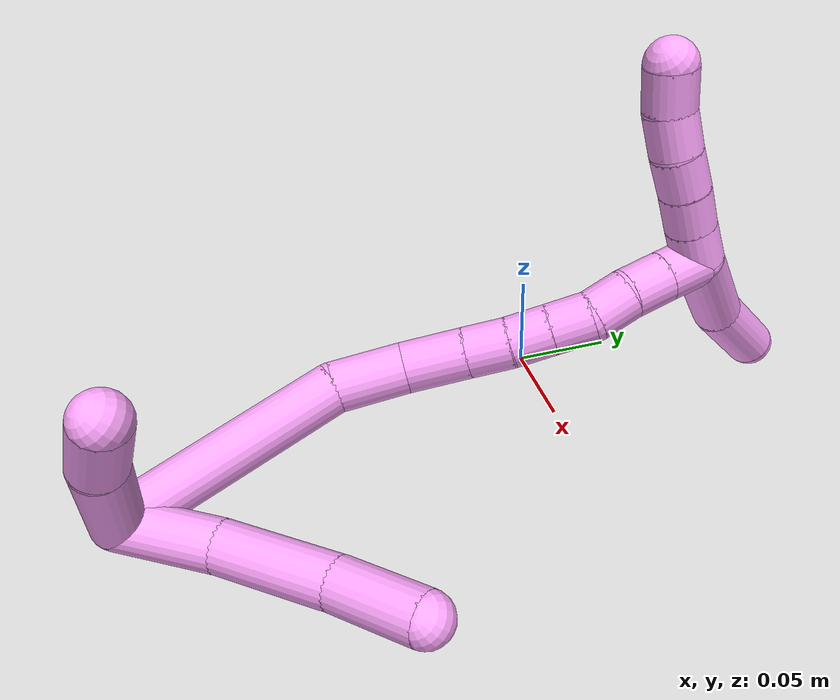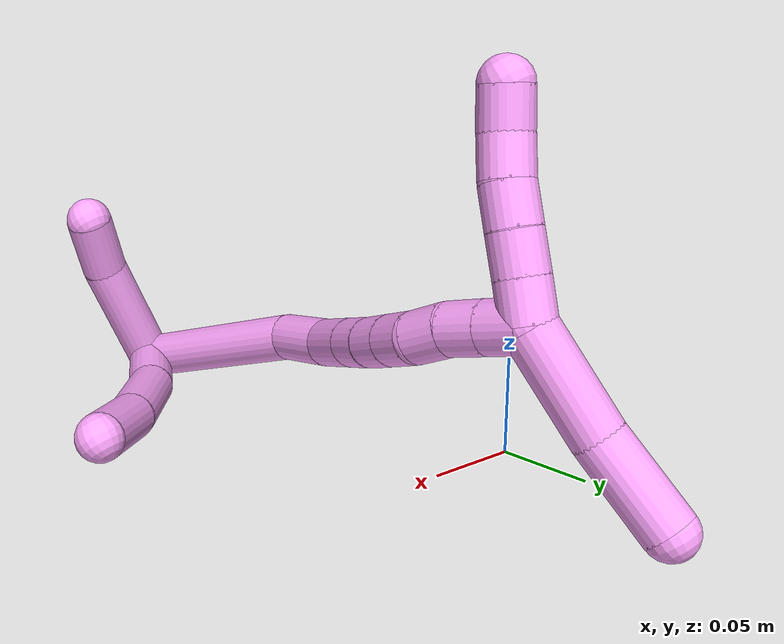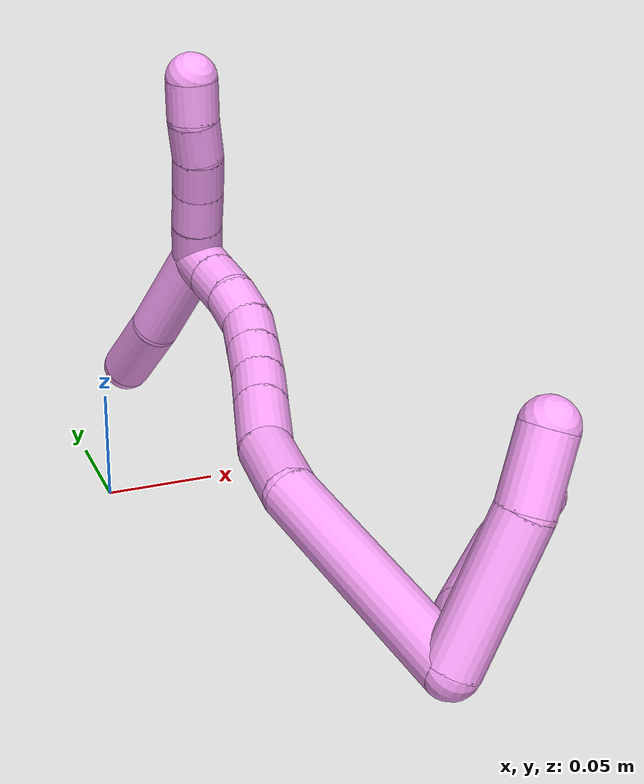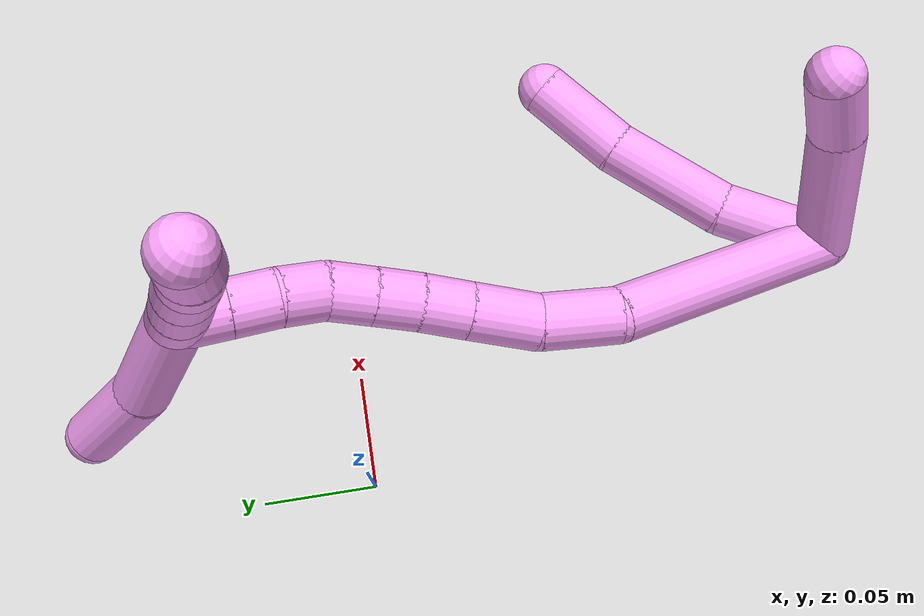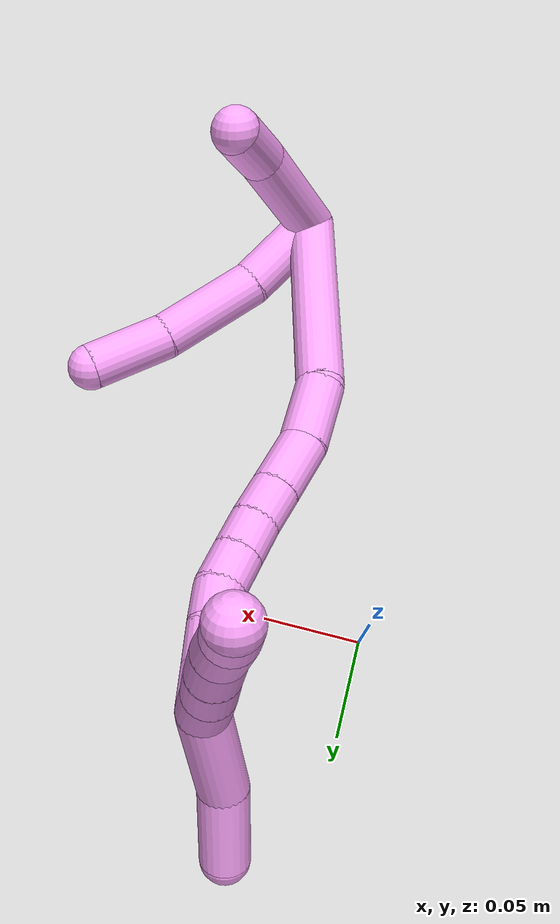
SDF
<sdf version="1.7">
 <world name="default">
  <model name="4">
   <static>0</static>
   <link name="4">
    <collision name="collision-cylinder-e_1_2_8">
     <pose>0.012915 0.017003 -0.011231 -2.15454 0.564893 -0.989474</pose>
     <geometry><cylinder><radius>0.0125</radius><length>0.048251</length></cylinder></geometry>
     <surface>
      <friction><ode><mu>1.16</mu><mu2>1.16</mu2><slip1>0</slip1><slip2>0</slip2></ode></friction>
      <contact><ode><kp>1e+06</kp><kd>1</kd><max_vel>0</max_vel><min_depth>0.001</min_depth></ode></contact>
     </surface>
    </collision>
    <visual name="visual-cylinder-e_1_2_8">
     <pose>0.012915 0.017003 -0.011231 -2.15454 0.564893 -0.989474</pose>
     <geometry><cylinder><radius>0.0125</radius><length>0.048251</length></cylinder></geometry>
     <material><ambient>1 0.65098 0.996078 1</ambient></material>
    </visual>
    <collision name="collision-cylinder-e_2_8_9">
     <pose>0.044722 0.053907 -0.030806 -1.9678 0.719081 -1.02883</pose>
     <geometry><cylinder><radius>0.0125</radius><length>0.057361</length></cylinder></geometry>
     <surface>
      <friction><ode><mu>1.16</mu><mu2>1.16</mu2><slip1>0</slip1><slip2>0</slip2></ode></friction>
      <contact><ode><kp>1e+06</kp><kd>1</kd><max_vel>0</max_vel><min_depth>0.001</min_depth></ode></contact>
     </surface>
    </collision>
    <visual name="visual-cylinder-e_2_8_9">
     <pose>0.044722 0.053907 -0.030806 -1.9678 0.719081 -1.02883</pose>
     <geometry><cylinder><radius>0.0125</radius><length>0.057361</length></cylinder></geometry>
     <material><ambient>1 0.65098 0.996078 1</ambient></material>
    </visual>
    <collision name="collision-cylinder-e_3_9_6">
     <pose>0.079827 0.08858 -0.042543 -1.79655 0.819117 -0.998165</pose>
     <geometry><cylinder><radius>0.0125</radius><length>0.044388</length></cylinder></geometry>
     <surface>
      <friction><ode><mu>1.16</mu><mu2>1.16</mu2><slip1>0</slip1><slip2>0</slip2></ode></friction>
      <contact><ode><kp>1e+06</kp><kd>1</kd><max_vel>0</max_vel><min_depth>0.001</min_depth></ode></contact>
     </surface>
    </collision>
    <visual name="visual-cylinder-e_3_9_6">
     <pose>0.079827 0.08858 -0.042543 -1.79655 0.819117 -0.998165</pose>
     <geometry><cylinder><radius>0.0125</radius><length>0.044388</length></cylinder></geometry>
     <material><ambient>1 0.65098 0.996078 1</ambient></material>
    </visual>
    <collision name="collision-cylinder-e_1_2_10">
     <pose>0.00893 0.019322 0.025879 -0.641335 0.269762 -0.090082</pose>
     <geometry><cylinder><radius>0.0125</radius><length>0.067017</length></cylinder></geometry>
     <surface>
      <friction><ode><mu>1.16</mu><mu2>1.16</mu2><slip1>0</slip1><slip2>0</slip2></ode></friction>
      <contact><ode><kp>1e+06</kp><kd>1</kd><max_vel>0</max_vel><min_depth>0.001</min_depth></ode></contact>
     </surface>
    </collision>
    <visual name="visual-cylinder-e_1_2_10">
     <pose>0.00893 0.019322 0.025879 -0.641335 0.269762 -0.090082</pose>
     <geometry><cylinder><radius>0.0125</radius><length>0.067017</length></cylinder></geometry>
     <material><ambient>1 0.65098 0.996078 1</ambient></material>
    </visual>
    <collision name="collision-cylinder-e_2_10_5">
     <pose>0.020897 0.050395 0.062924 -0.81093 0.185213 -0.079689</pose>
     <geometry><cylinder><radius>0.0125</radius><length>0.032983</length></cylinder></geometry>
     <surface>
      <friction><ode><mu>1.16</mu><mu2>1.16</mu2><slip1>0</slip1><slip2>0</slip2></ode></friction>
      <contact><ode><kp>1e+06</kp><kd>1</kd><max_vel>0</max_vel><min_depth>0.001</min_depth></ode></contact>
     </surface>
    </collision>
    <visual name="visual-cylinder-e_2_10_5">
     <pose>0.020897 0.050395 0.062924 -0.81093 0.185213 -0.079689</pose>
     <geometry><cylinder><radius>0.0125</radius><length>0.032983</length></cylinder></geometry>
     <material><ambient>1 0.65098 0.996078 1</ambient></material>
    </visual>
    <collision name="collision-cylinder-e_1_2_11">
     <pose>-0.014648 0.050302 -0.020219 -1.95299 -0.263898 0.38784</pose>
     <geometry><cylinder><radius>0.0125</radius><length>0.112315</length></cylinder></geometry>
     <surface>
      <friction><ode><mu>1.16</mu><mu2>1.16</mu2><slip1>0</slip1><slip2>0</slip2></ode></friction>
      <contact><ode><kp>1e+06</kp><kd>1</kd><max_vel>0</max_vel><min_depth>0.001</min_depth></ode></contact>
     </surface>
    </collision>
    <visual name="visual-cylinder-e_1_2_11">
     <pose>-0.014648 0.050302 -0.020219 -1.95299 -0.263898 0.38784</pose>
     <geometry><cylinder><radius>0.0125</radius><length>0.112315</length></cylinder></geometry>
     <material><ambient>1 0.65098 0.996078 1</ambient></material>
    </visual>
    <collision name="collision-cylinder-e_2_11_12">
     <pose>-0.028661 0.116245 -0.048452 -2.04429 0.036161 -0.059148</pose>
     <geometry><cylinder><radius>0.0125</radius><length>0.035172</length></cylinder></geometry>
     <surface>
      <friction><ode><mu>1.16</mu><mu2>1.16</mu2><slip1>0</slip1><slip2>0</slip2></ode></friction>
      <contact><ode><kp>1e+06</kp><kd>1</kd><max_vel>0</max_vel><min_depth>0.001</min_depth></ode></contact>
     </surface>
    </collision>
    <visual name="visual-cylinder-e_2_11_12">
     <pose>-0.028661 0.116245 -0.048452 -2.04429 0.036161 -0.059148</pose>
     <geometry><cylinder><radius>0.0125</radius><length>0.035172</length></cylinder></geometry>
     <material><ambient>1 0.65098 0.996078 1</ambient></material>
    </visual>
    <collision name="collision-cylinder-e_3_12_13">
     <pose>-0.024604 0.146201 -0.060907 -1.87158 0.224388 -0.303473</pose>
     <geometry><cylinder><radius>0.0125</radius><length>0.030747</length></cylinder></geometry>
     <surface>
      <friction><ode><mu>1.16</mu><mu2>1.16</mu2><slip1>0</slip1><slip2>0</slip2></ode></friction>
      <contact><ode><kp>1e+06</kp><kd>1</kd><max_vel>0</max_vel><min_depth>0.001</min_depth></ode></contact>
     </surface>
    </collision>
    <visual name="visual-cylinder-e_3_12_13">
     <pose>-0.024604 0.146201 -0.060907 -1.87158 0.224388 -0.303473</pose>
     <geometry><cylinder><radius>0.0125</radius><length>0.030747</length></cylinder></geometry>
     <material><ambient>1 0.65098 0.996078 1</ambient></material>
    </visual>
    <collision name="collision-cylinder-e_4_13_14">
     <pose>-0.018759 0.170269 -0.068383 -1.87252 0.233023 -0.315371</pose>
     <geometry><cylinder><radius>0.0125</radius><length>0.020997</length></cylinder></geometry>
     <surface>
      <friction><ode><mu>1.16</mu><mu2>1.16</mu2><slip1>0</slip1><slip2>0</slip2></ode></friction>
      <contact><ode><kp>1e+06</kp><kd>1</kd><max_vel>0</max_vel><min_depth>0.001</min_depth></ode></contact>
     </surface>
    </collision>
    <visual name="visual-cylinder-e_4_13_14">
     <pose>-0.018759 0.170269 -0.068383 -1.87252 0.233023 -0.315371</pose>
     <geometry><cylinder><radius>0.0125</radius><length>0.020997</length></cylinder></geometry>
     <material><ambient>1 0.65098 0.996078 1</ambient></material>
    </visual>
    <collision name="collision-cylinder-e_5_14_15">
     <pose>-0.014728 0.189542 -0.074045 -1.84006 0.161341 -0.211565</pose>
     <geometry><cylinder><radius>0.0125</radius><length>0.020011</length></cylinder></geometry>
     <surface>
      <friction><ode><mu>1.16</mu><mu2>1.16</mu2><slip1>0</slip1><slip2>0</slip2></ode></friction>
      <contact><ode><kp>1e+06</kp><kd>1</kd><max_vel>0</max_vel><min_depth>0.001</min_depth></ode></contact>
     </surface>
    </collision>
    <visual name="visual-cylinder-e_5_14_15">
     <pose>-0.014728 0.189542 -0.074045 -1.84006 0.161341 -0.211565</pose>
     <geometry><cylinder><radius>0.0125</radius><length>0.020011</length></cylinder></geometry>
     <material><ambient>1 0.65098 0.996078 1</ambient></material>
    </visual>
    <collision name="collision-cylinder-e_6_15_16">
     <pose>-0.01158 0.208635 -0.079333 -1.8419 0.153842 -0.202142</pose>
     <geometry><cylinder><radius>0.0125</radius><length>0.020109</length></cylinder></geometry>
     <surface>
      <friction><ode><mu>1.16</mu><mu2>1.16</mu2><slip1>0</slip1><slip2>0</slip2></ode></friction>
      <contact><ode><kp>1e+06</kp><kd>1</kd><max_vel>0</max_vel><min_depth>0.001</min_depth></ode></contact>
     </surface>
    </collision>
    <visual name="visual-cylinder-e_6_15_16">
     <pose>-0.01158 0.208635 -0.079333 -1.8419 0.153842 -0.202142</pose>
     <geometry><cylinder><radius>0.0125</radius><length>0.020109</length></cylinder></geometry>
     <material><ambient>1 0.65098 0.996078 1</ambient></material>
    </visual>
    <collision name="collision-cylinder-e_7_16_17">
     <pose>-0.011549 0.227865 -0.084459 -1.82076 -0.150356 0.193326</pose>
     <geometry><cylinder><radius>0.0125</radius><length>0.020163</length></cylinder></geometry>
     <surface>
      <friction><ode><mu>1.16</mu><mu2>1.16</mu2><slip1>0</slip1><slip2>0</slip2></ode></friction>
      <contact><ode><kp>1e+06</kp><kd>1</kd><max_vel>0</max_vel><min_depth>0.001</min_depth></ode></contact>
     </surface>
    </collision>
    <visual name="visual-cylinder-e_7_16_17">
     <pose>-0.011549 0.227865 -0.084459 -1.82076 -0.150356 0.193326</pose>
     <geometry><cylinder><radius>0.0125</radius><length>0.020163</length></cylinder></geometry>
     <material><ambient>1 0.65098 0.996078 1</ambient></material>
    </visual>
    <collision name="collision-cylinder-e_8_17_18">
     <pose>-0.014519 0.246556 -0.090967 -1.99151 -0.146447 0.225407</pose>
     <geometry><cylinder><radius>0.0125</radius><length>0.020005</length></cylinder></geometry>
     <surface>
      <friction><ode><mu>1.16</mu><mu2>1.16</mu2><slip1>0</slip1><slip2>0</slip2></ode></friction>
      <contact><ode><kp>1e+06</kp><kd>1</kd><max_vel>0</max_vel><min_depth>0.001</min_depth></ode></contact>
     </surface>
    </collision>
    <visual name="visual-cylinder-e_8_17_18">
     <pose>-0.014519 0.246556 -0.090967 -1.99151 -0.146447 0.225407</pose>
     <geometry><cylinder><radius>0.0125</radius><length>0.020005</length></cylinder></geometry>
     <material><ambient>1 0.65098 0.996078 1</ambient></material>
    </visual>
    <collision name="collision-cylinder-e_9_18_1">
     <pose>-0.017356 0.26482 -0.099221 -1.99897 -0.134944 0.209477</pose>
     <geometry><cylinder><radius>0.0125</radius><length>0.020481</length></cylinder></geometry>
     <surface>
      <friction><ode><mu>1.16</mu><mu2>1.16</mu2><slip1>0</slip1><slip2>0</slip2></ode></friction>
      <contact><ode><kp>1e+06</kp><kd>1</kd><max_vel>0</max_vel><min_depth>0.001</min_depth></ode></contact>
     </surface>
    </collision>
    <visual name="visual-cylinder-e_9_18_1">
     <pose>-0.017356 0.26482 -0.099221 -1.99897 -0.134944 0.209477</pose>
     <geometry><cylinder><radius>0.0125</radius><length>0.020481</length></cylinder></geometry>
     <material><ambient>1 0.65098 0.996078 1</ambient></material>
    </visual>
    <collision name="collision-cylinder-e_1_1_19">
     <pose>-0.021367 0.276858 -0.094205 -0.295185 -0.26642 0.03984</pose>
     <geometry><cylinder><radius>0.0125</radius><length>0.02</length></cylinder></geometry>
     <surface>
      <friction><ode><mu>1.16</mu><mu2>1.16</mu2><slip1>0</slip1><slip2>0</slip2></ode></friction>
      <contact><ode><kp>1e+06</kp><kd>1</kd><max_vel>0</max_vel><min_depth>0.001</min_depth></ode></contact>
     </surface>
    </collision>
    <visual name="visual-cylinder-e_1_1_19">
     <pose>-0.021367 0.276858 -0.094205 -0.295185 -0.26642 0.03984</pose>
     <geometry><cylinder><radius>0.0125</radius><length>0.02</length></cylinder></geometry>
     <material><ambient>1 0.65098 0.996078 1</ambient></material>
    </visual>
    <collision name="collision-cylinder-e_2_19_20">
     <pose>-0.026196 0.282733 -0.075714 -0.32 -0.221447 0.03588</pose>
     <geometry><cylinder><radius>0.0125</radius><length>0.02</length></cylinder></geometry>
     <surface>
      <friction><ode><mu>1.16</mu><mu2>1.16</mu2><slip1>0</slip1><slip2>0</slip2></ode></friction>
      <contact><ode><kp>1e+06</kp><kd>1</kd><max_vel>0</max_vel><min_depth>0.001</min_depth></ode></contact>
     </surface>
    </collision>
    <visual name="visual-cylinder-e_2_19_20">
     <pose>-0.026196 0.282733 -0.075714 -0.32 -0.221447 0.03588</pose>
     <geometry><cylinder><radius>0.0125</radius><length>0.02</length></cylinder></geometry>
     <material><ambient>1 0.65098 0.996078 1</ambient></material>
    </visual>
    <collision name="collision-cylinder-e_3_20_21">
     <pose>-0.030979 0.288547 -0.057192 -0.288107 -0.261609 0.038162</pose>
     <geometry><cylinder><radius>0.0125</radius><length>0.02</length></cylinder></geometry>
     <surface>
      <friction><ode><mu>1.16</mu><mu2>1.16</mu2><slip1>0</slip1><slip2>0</slip2></ode></friction>
      <contact><ode><kp>1e+06</kp><kd>1</kd><max_vel>0</max_vel><min_depth>0.001</min_depth></ode></contact>
     </surface>
    </collision>
    <visual name="visual-cylinder-e_3_20_21">
     <pose>-0.030979 0.288547 -0.057192 -0.288107 -0.261609 0.038162</pose>
     <geometry><cylinder><radius>0.0125</radius><length>0.02</length></cylinder></geometry>
     <material><ambient>1 0.65098 0.996078 1</ambient></material>
    </visual>
    <collision name="collision-cylinder-e_4_21_22">
     <pose>-0.037001 0.294813 -0.039224 -0.384341 -0.350729 0.068923</pose>
     <geometry><cylinder><radius>0.0125</radius><length>0.02</length></cylinder></geometry>
     <surface>
      <friction><ode><mu>1.16</mu><mu2>1.16</mu2><slip1>0</slip1><slip2>0</slip2></ode></friction>
      <contact><ode><kp>1e+06</kp><kd>1</kd><max_vel>0</max_vel><min_depth>0.001</min_depth></ode></contact>
     </surface>
    </collision>
    <visual name="visual-cylinder-e_4_21_22">
     <pose>-0.037001 0.294813 -0.039224 -0.384341 -0.350729 0.068923</pose>
     <geometry><cylinder><radius>0.0125</radius><length>0.02</length></cylinder></geometry>
     <material><ambient>1 0.65098 0.996078 1</ambient></material>
    </visual>
    <collision name="collision-cylinder-e_5_22_4">
     <pose>-0.04273 0.303275 -0.022132 -0.532453 -0.231425 0.063372</pose>
     <geometry><cylinder><radius>0.0125</radius><length>0.02</length></cylinder></geometry>
     <surface>
      <friction><ode><mu>1.16</mu><mu2>1.16</mu2><slip1>0</slip1><slip2>0</slip2></ode></friction>
      <contact><ode><kp>1e+06</kp><kd>1</kd><max_vel>0</max_vel><min_depth>0.001</min_depth></ode></contact>
     </surface>
    </collision>
    <visual name="visual-cylinder-e_5_22_4">
     <pose>-0.04273 0.303275 -0.022132 -0.532453 -0.231425 0.063372</pose>
     <geometry><cylinder><radius>0.0125</radius><length>0.02</length></cylinder></geometry>
     <material><ambient>1 0.65098 0.996078 1</ambient></material>
    </visual>
    <collision name="collision-cylinder-e_1_1_23">
     <pose>-0.021763 0.271655 -0.130156 3.05213 -0.11241 -1.79758</pose>
     <geometry><cylinder><radius>0.0125</radius><length>0.053998</length></cylinder></geometry>
     <surface>
      <friction><ode><mu>1.16</mu><mu2>1.16</mu2><slip1>0</slip1><slip2>0</slip2></ode></friction>
      <contact><ode><kp>1e+06</kp><kd>1</kd><max_vel>0</max_vel><min_depth>0.001</min_depth></ode></contact>
     </surface>
    </collision>
    <visual name="visual-cylinder-e_1_1_23">
     <pose>-0.021763 0.271655 -0.130156 3.05213 -0.11241 -1.79758</pose>
     <geometry><cylinder><radius>0.0125</radius><length>0.053998</length></cylinder></geometry>
     <material><ambient>1 0.65098 0.996078 1</ambient></material>
    </visual>
    <collision name="collision-cylinder-e_2_23_3">
     <pose>-0.025345 0.272073 -0.179699 -3.01883 -0.02408 0.386933</pose>
     <geometry><cylinder><radius>0.0125</radius><length>0.046002</length></cylinder></geometry>
     <surface>
      <friction><ode><mu>1.16</mu><mu2>1.16</mu2><slip1>0</slip1><slip2>0</slip2></ode></friction>
      <contact><ode><kp>1e+06</kp><kd>1</kd><max_vel>0</max_vel><min_depth>0.001</min_depth></ode></contact>
     </surface>
    </collision>
    <visual name="visual-cylinder-e_2_23_3">
     <pose>-0.025345 0.272073 -0.179699 -3.01883 -0.02408 0.386933</pose>
     <geometry><cylinder><radius>0.0125</radius><length>0.046002</length></cylinder></geometry>
     <material><ambient>1 0.65098 0.996078 1</ambient></material>
    </visual>
    <collision name="collision-sphere-3">
     <pose>-0.025899 0.274889 -0.20252 0 -0 0</pose>
     <geometry><sphere><radius>0.0125</radius></sphere></geometry>
     <surface>
      <friction><ode><mu>1.16</mu><mu2>1.16</mu2><slip1>0</slip1><slip2>0</slip2></ode></friction>
      <contact><ode><kp>1e+06</kp><kd>1</kd><max_vel>0</max_vel><min_depth>0.001</min_depth></ode></contact>
     </surface>
    </collision>
    <visual name="visual-sphere-3">
     <pose>-0.025899 0.274889 -0.20252 0 -0 0</pose>
     <geometry><sphere><radius>0.0125</radius></sphere></geometry>
     <material><ambient>1 0.65098 0.996078 1</ambient></material>
    </visual>
    <collision name="collision-sphere-23">
     <pose>-0.024791 0.269258 -0.156878 0 -0 0</pose>
     <geometry><sphere><radius>0.0125</radius></sphere></geometry>
     <surface>
      <friction><ode><mu>1.16</mu><mu2>1.16</mu2><slip1>0</slip1><slip2>0</slip2></ode></friction>
      <contact><ode><kp>1e+06</kp><kd>1</kd><max_vel>0</max_vel><min_depth>0.001</min_depth></ode></contact>
     </surface>
    </collision>
    <visual name="visual-sphere-23">
     <pose>-0.024791 0.269258 -0.156878 0 -0 0</pose>
     <geometry><sphere><radius>0.0125</radius></sphere></geometry>
     <material><ambient>1 0.65098 0.996078 1</ambient></material>
    </visual>
    <collision name="collision-sphere-4">
     <pose>-0.045024 0.308216 -0.013746 0 -0 0</pose>
     <geometry><sphere><radius>0.0125</radius></sphere></geometry>
     <surface>
      <friction><ode><mu>1.16</mu><mu2>1.16</mu2><slip1>0</slip1><slip2>0</slip2></ode></friction>
      <contact><ode><kp>1e+06</kp><kd>1</kd><max_vel>0</max_vel><min_depth>0.001</min_depth></ode></contact>
     </surface>
    </collision>
    <visual name="visual-sphere-4">
     <pose>-0.045024 0.308216 -0.013746 0 -0 0</pose>
     <geometry><sphere><radius>0.0125</radius></sphere></geometry>
     <material><ambient>1 0.65098 0.996078 1</ambient></material>
    </visual>
    <collision name="collision-sphere-22">
     <pose>-0.040437 0.298334 -0.030518 0 -0 0</pose>
     <geometry><sphere><radius>0.0125</radius></sphere></geometry>
     <surface>
      <friction><ode><mu>1.16</mu><mu2>1.16</mu2><slip1>0</slip1><slip2>0</slip2></ode></friction>
      <contact><ode><kp>1e+06</kp><kd>1</kd><max_vel>0</max_vel><min_depth>0.001</min_depth></ode></contact>
     </surface>
    </collision>
    <visual name="visual-sphere-22">
     <pose>-0.040437 0.298334 -0.030518 0 -0 0</pose>
     <geometry><sphere><radius>0.0125</radius></sphere></geometry>
     <material><ambient>1 0.65098 0.996078 1</ambient></material>
    </visual>
    <collision name="collision-sphere-21">
     <pose>-0.033565 0.291292 -0.047931 0 -0 0</pose>
     <geometry><sphere><radius>0.0125</radius></sphere></geometry>
     <surface>
      <friction><ode><mu>1.16</mu><mu2>1.16</mu2><slip1>0</slip1><slip2>0</slip2></ode></friction>
      <contact><ode><kp>1e+06</kp><kd>1</kd><max_vel>0</max_vel><min_depth>0.001</min_depth></ode></contact>
     </surface>
    </collision>
    <visual name="visual-sphere-21">
     <pose>-0.033565 0.291292 -0.047931 0 -0 0</pose>
     <geometry><sphere><radius>0.0125</radius></sphere></geometry>
     <material><ambient>1 0.65098 0.996078 1</ambient></material>
    </visual>
    <collision name="collision-sphere-20">
     <pose>-0.028392 0.285802 -0.066454 0 -0 0</pose>
     <geometry><sphere><radius>0.0125</radius></sphere></geometry>
     <surface>
      <friction><ode><mu>1.16</mu><mu2>1.16</mu2><slip1>0</slip1><slip2>0</slip2></ode></friction>
      <contact><ode><kp>1e+06</kp><kd>1</kd><max_vel>0</max_vel><min_depth>0.001</min_depth></ode></contact>
     </surface>
    </collision>
    <visual name="visual-sphere-20">
     <pose>-0.028392 0.285802 -0.066454 0 -0 0</pose>
     <geometry><sphere><radius>0.0125</radius></sphere></geometry>
     <material><ambient>1 0.65098 0.996078 1</ambient></material>
    </visual>
    <collision name="collision-sphere-5">
     <pose>0.023934 0.062145 0.074089 0 -0 0</pose>
     <geometry><sphere><radius>0.0125</radius></sphere></geometry>
     <surface>
      <friction><ode><mu>1.16</mu><mu2>1.16</mu2><slip1>0</slip1><slip2>0</slip2></ode></friction>
      <contact><ode><kp>1e+06</kp><kd>1</kd><max_vel>0</max_vel><min_depth>0.001</min_depth></ode></contact>
     </surface>
    </collision>
    <visual name="visual-sphere-5">
     <pose>0.023934 0.062145 0.074089 0 -0 0</pose>
     <geometry><sphere><radius>0.0125</radius></sphere></geometry>
     <material><ambient>1 0.65098 0.996078 1</ambient></material>
    </visual>
    <collision name="collision-sphere-10">
     <pose>0.01786 0.038644 0.051759 0 -0 0</pose>
     <geometry><sphere><radius>0.0125</radius></sphere></geometry>
     <surface>
      <friction><ode><mu>1.16</mu><mu2>1.16</mu2><slip1>0</slip1><slip2>0</slip2></ode></friction>
      <contact><ode><kp>1e+06</kp><kd>1</kd><max_vel>0</max_vel><min_depth>0.001</min_depth></ode></contact>
     </surface>
    </collision>
    <visual name="visual-sphere-10">
     <pose>0.01786 0.038644 0.051759 0 -0 0</pose>
     <geometry><sphere><radius>0.0125</radius></sphere></geometry>
     <material><ambient>1 0.65098 0.996078 1</ambient></material>
    </visual>
    <collision name="collision-sphere-6">
     <pose>0.096041 0.10335 -0.045935 0 -0 0</pose>
     <geometry><sphere><radius>0.0125</radius></sphere></geometry>
     <surface>
      <friction><ode><mu>1.16</mu><mu2>1.16</mu2><slip1>0</slip1><slip2>0</slip2></ode></friction>
      <contact><ode><kp>1e+06</kp><kd>1</kd><max_vel>0</max_vel><min_depth>0.001</min_depth></ode></contact>
     </surface>
    </collision>
    <visual name="visual-sphere-6">
     <pose>0.096041 0.10335 -0.045935 0 -0 0</pose>
     <geometry><sphere><radius>0.0125</radius></sphere></geometry>
     <material><ambient>1 0.65098 0.996078 1</ambient></material>
    </visual>
    <collision name="collision-sphere-9">
     <pose>0.063613 0.073809 -0.03915 0 -0 0</pose>
     <geometry><sphere><radius>0.0125</radius></sphere></geometry>
     <surface>
      <friction><ode><mu>1.16</mu><mu2>1.16</mu2><slip1>0</slip1><slip2>0</slip2></ode></friction>
      <contact><ode><kp>1e+06</kp><kd>1</kd><max_vel>0</max_vel><min_depth>0.001</min_depth></ode></contact>
     </surface>
    </collision>
    <visual name="visual-sphere-9">
     <pose>0.063613 0.073809 -0.03915 0 -0 0</pose>
     <geometry><sphere><radius>0.0125</radius></sphere></geometry>
     <material><ambient>1 0.65098 0.996078 1</ambient></material>
    </visual>
    <collision name="collision-sphere-2">
     <geometry><sphere><radius>0.0125</radius></sphere></geometry>
     <surface>
      <friction><ode><mu>1.16</mu><mu2>1.16</mu2><slip1>0</slip1><slip2>0</slip2></ode></friction>
      <contact><ode><kp>1e+06</kp><kd>1</kd><max_vel>0</max_vel><min_depth>0.001</min_depth></ode></contact>
     </surface>
    </collision>
    <visual name="visual-sphere-2">
     <geometry><sphere><radius>0.0125</radius></sphere></geometry>
     <material><ambient>1 0.65098 0.996078 1</ambient></material>
    </visual>
    <collision name="collision-sphere-19">
     <pose>-0.024 0.279665 -0.084975 0 -0 0</pose>
     <geometry><sphere><radius>0.0125</radius></sphere></geometry>
     <surface>
      <friction><ode><mu>1.16</mu><mu2>1.16</mu2><slip1>0</slip1><slip2>0</slip2></ode></friction>
      <contact><ode><kp>1e+06</kp><kd>1</kd><max_vel>0</max_vel><min_depth>0.001</min_depth></ode></contact>
     </surface>
    </collision>
    <visual name="visual-sphere-19">
     <pose>-0.024 0.279665 -0.084975 0 -0 0</pose>
     <geometry><sphere><radius>0.0125</radius></sphere></geometry>
     <material><ambient>1 0.65098 0.996078 1</ambient></material>
    </visual>
    <collision name="collision-sphere-8">
     <pose>0.02583 0.034006 -0.022462 0 -0 0</pose>
     <geometry><sphere><radius>0.0125</radius></sphere></geometry>
     <surface>
      <friction><ode><mu>1.16</mu><mu2>1.16</mu2><slip1>0</slip1><slip2>0</slip2></ode></friction>
      <contact><ode><kp>1e+06</kp><kd>1</kd><max_vel>0</max_vel><min_depth>0.001</min_depth></ode></contact>
     </surface>
    </collision>
    <visual name="visual-sphere-8">
     <pose>0.02583 0.034006 -0.022462 0 -0 0</pose>
     <geometry><sphere><radius>0.0125</radius></sphere></geometry>
     <material><ambient>1 0.65098 0.996078 1</ambient></material>
    </visual>
    <collision name="collision-sphere-11">
     <pose>-0.029297 0.100603 -0.040438 0 -0 0</pose>
     <geometry><sphere><radius>0.0125</radius></sphere></geometry>
     <surface>
      <friction><ode><mu>1.16</mu><mu2>1.16</mu2><slip1>0</slip1><slip2>0</slip2></ode></friction>
      <contact><ode><kp>1e+06</kp><kd>1</kd><max_vel>0</max_vel><min_depth>0.001</min_depth></ode></contact>
     </surface>
    </collision>
    <visual name="visual-sphere-11">
     <pose>-0.029297 0.100603 -0.040438 0 -0 0</pose>
     <geometry><sphere><radius>0.0125</radius></sphere></geometry>
     <material><ambient>1 0.65098 0.996078 1</ambient></material>
    </visual>
    <collision name="collision-sphere-12">
     <pose>-0.028025 0.131886 -0.056466 0 -0 0</pose>
     <geometry><sphere><radius>0.0125</radius></sphere></geometry>
     <surface>
      <friction><ode><mu>1.16</mu><mu2>1.16</mu2><slip1>0</slip1><slip2>0</slip2></ode></friction>
      <contact><ode><kp>1e+06</kp><kd>1</kd><max_vel>0</max_vel><min_depth>0.001</min_depth></ode></contact>
     </surface>
    </collision>
    <visual name="visual-sphere-12">
     <pose>-0.028025 0.131886 -0.056466 0 -0 0</pose>
     <geometry><sphere><radius>0.0125</radius></sphere></geometry>
     <material><ambient>1 0.65098 0.996078 1</ambient></material>
    </visual>
    <collision name="collision-sphere-13">
     <pose>-0.021184 0.160516 -0.065347 0 -0 0</pose>
     <geometry><sphere><radius>0.0125</radius></sphere></geometry>
     <surface>
      <friction><ode><mu>1.16</mu><mu2>1.16</mu2><slip1>0</slip1><slip2>0</slip2></ode></friction>
      <contact><ode><kp>1e+06</kp><kd>1</kd><max_vel>0</max_vel><min_depth>0.001</min_depth></ode></contact>
     </surface>
    </collision>
    <visual name="visual-sphere-13">
     <pose>-0.021184 0.160516 -0.065347 0 -0 0</pose>
     <geometry><sphere><radius>0.0125</radius></sphere></geometry>
     <material><ambient>1 0.65098 0.996078 1</ambient></material>
    </visual>
    <collision name="collision-sphere-14">
     <pose>-0.016335 0.180022 -0.071418 0 -0 0</pose>
     <geometry><sphere><radius>0.0125</radius></sphere></geometry>
     <surface>
      <friction><ode><mu>1.16</mu><mu2>1.16</mu2><slip1>0</slip1><slip2>0</slip2></ode></friction>
      <contact><ode><kp>1e+06</kp><kd>1</kd><max_vel>0</max_vel><min_depth>0.001</min_depth></ode></contact>
     </surface>
    </collision>
    <visual name="visual-sphere-14">
     <pose>-0.016335 0.180022 -0.071418 0 -0 0</pose>
     <geometry><sphere><radius>0.0125</radius></sphere></geometry>
     <material><ambient>1 0.65098 0.996078 1</ambient></material>
    </visual>
    <collision name="collision-sphere-15">
     <pose>-0.01312 0.199062 -0.076672 0 -0 0</pose>
     <geometry><sphere><radius>0.0125</radius></sphere></geometry>
     <surface>
      <friction><ode><mu>1.16</mu><mu2>1.16</mu2><slip1>0</slip1><slip2>0</slip2></ode></friction>
      <contact><ode><kp>1e+06</kp><kd>1</kd><max_vel>0</max_vel><min_depth>0.001</min_depth></ode></contact>
     </surface>
    </collision>
    <visual name="visual-sphere-15">
     <pose>-0.01312 0.199062 -0.076672 0 -0 0</pose>
     <geometry><sphere><radius>0.0125</radius></sphere></geometry>
     <material><ambient>1 0.65098 0.996078 1</ambient></material>
    </visual>
    <collision name="collision-sphere-16">
     <pose>-0.010039 0.218207 -0.081994 0 -0 0</pose>
     <geometry><sphere><radius>0.0125</radius></sphere></geometry>
     <surface>
      <friction><ode><mu>1.16</mu><mu2>1.16</mu2><slip1>0</slip1><slip2>0</slip2></ode></friction>
      <contact><ode><kp>1e+06</kp><kd>1</kd><max_vel>0</max_vel><min_depth>0.001</min_depth></ode></contact>
     </surface>
    </collision>
    <visual name="visual-sphere-16">
     <pose>-0.010039 0.218207 -0.081994 0 -0 0</pose>
     <geometry><sphere><radius>0.0125</radius></sphere></geometry>
     <material><ambient>1 0.65098 0.996078 1</ambient></material>
    </visual>
    <collision name="collision-sphere-17">
     <pose>-0.013059 0.237523 -0.086925 0 -0 0</pose>
     <geometry><sphere><radius>0.0125</radius></sphere></geometry>
     <surface>
      <friction><ode><mu>1.16</mu><mu2>1.16</mu2><slip1>0</slip1><slip2>0</slip2></ode></friction>
      <contact><ode><kp>1e+06</kp><kd>1</kd><max_vel>0</max_vel><min_depth>0.001</min_depth></ode></contact>
     </surface>
    </collision>
    <visual name="visual-sphere-17">
     <pose>-0.013059 0.237523 -0.086925 0 -0 0</pose>
     <geometry><sphere><radius>0.0125</radius></sphere></geometry>
     <material><ambient>1 0.65098 0.996078 1</ambient></material>
    </visual>
    <collision name="collision-sphere-18">
     <pose>-0.015979 0.255589 -0.095008 0 -0 0</pose>
     <geometry><sphere><radius>0.0125</radius></sphere></geometry>
     <surface>
      <friction><ode><mu>1.16</mu><mu2>1.16</mu2><slip1>0</slip1><slip2>0</slip2></ode></friction>
      <contact><ode><kp>1e+06</kp><kd>1</kd><max_vel>0</max_vel><min_depth>0.001</min_depth></ode></contact>
     </surface>
    </collision>
    <visual name="visual-sphere-18">
     <pose>-0.015979 0.255589 -0.095008 0 -0 0</pose>
     <geometry><sphere><radius>0.0125</radius></sphere></geometry>
     <material><ambient>1 0.65098 0.996078 1</ambient></material>
    </visual>
    <collision name="collision-sphere-1">
     <pose>-0.018734 0.274051 -0.103435 0 -0 0</pose>
     <geometry><sphere><radius>0.0125</radius></sphere></geometry>
     <surface>
      <friction><ode><mu>1.16</mu><mu2>1.16</mu2><slip1>0</slip1><slip2>0</slip2></ode></friction>
      <contact><ode><kp>1e+06</kp><kd>1</kd><max_vel>0</max_vel><min_depth>0.001</min_depth></ode></contact>
     </surface>
    </collision>
    <visual name="visual-sphere-1">
     <pose>-0.018734 0.274051 -0.103435 0 -0 0</pose>
     <geometry><sphere><radius>0.0125</radius></sphere></geometry>
     <material><ambient>1 0.65098 0.996078 1</ambient></material>
    </visual>
    <inertial>
     <pose>-0.003596 0.143544 -0.049823 0 -0 0</pose>
     <mass>0.75</mass>
     <inertia>
      <ixx>0.000196</ixx>
      <ixy>0</ixy>
      <ixz>0</ixz>
      <iyy>4.3e-05</iyy>
      <iyz>0</iyz>
      <izz>-0.000178</izz>
     </inertia>
    </inertial>
   </link>
   <pose>0.078292 -0.219986 0.016544 0.607245 0.193656 0.032073</pose>
  </model>
 </world>
</sdf>
